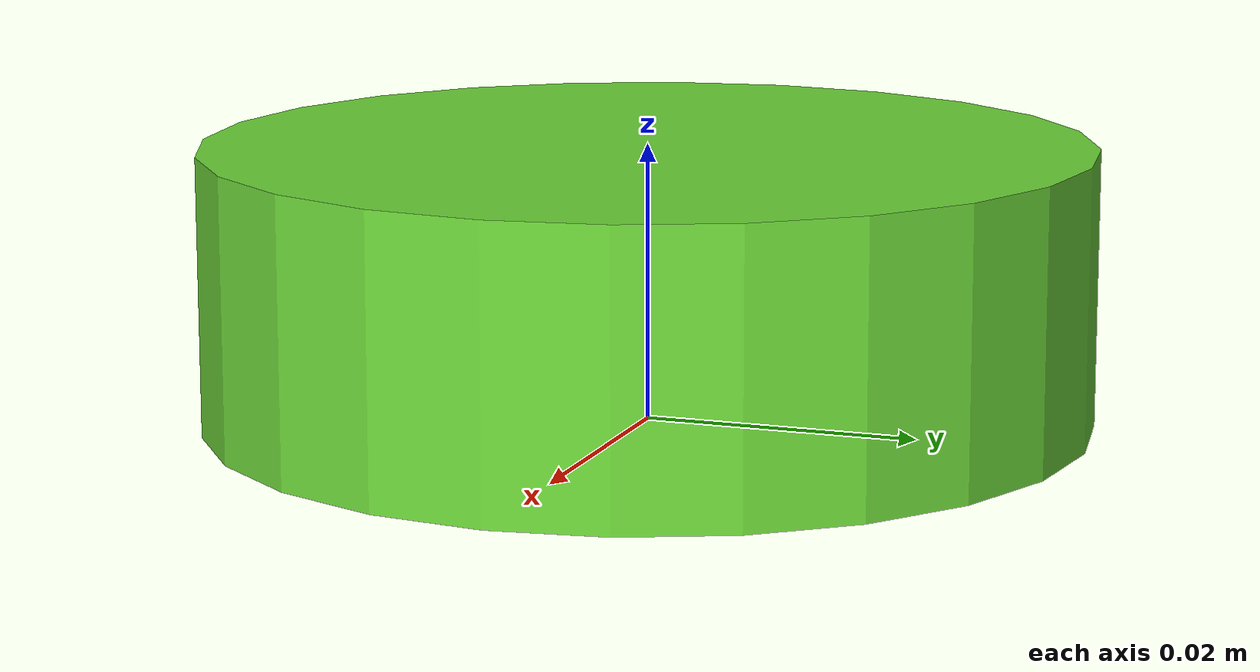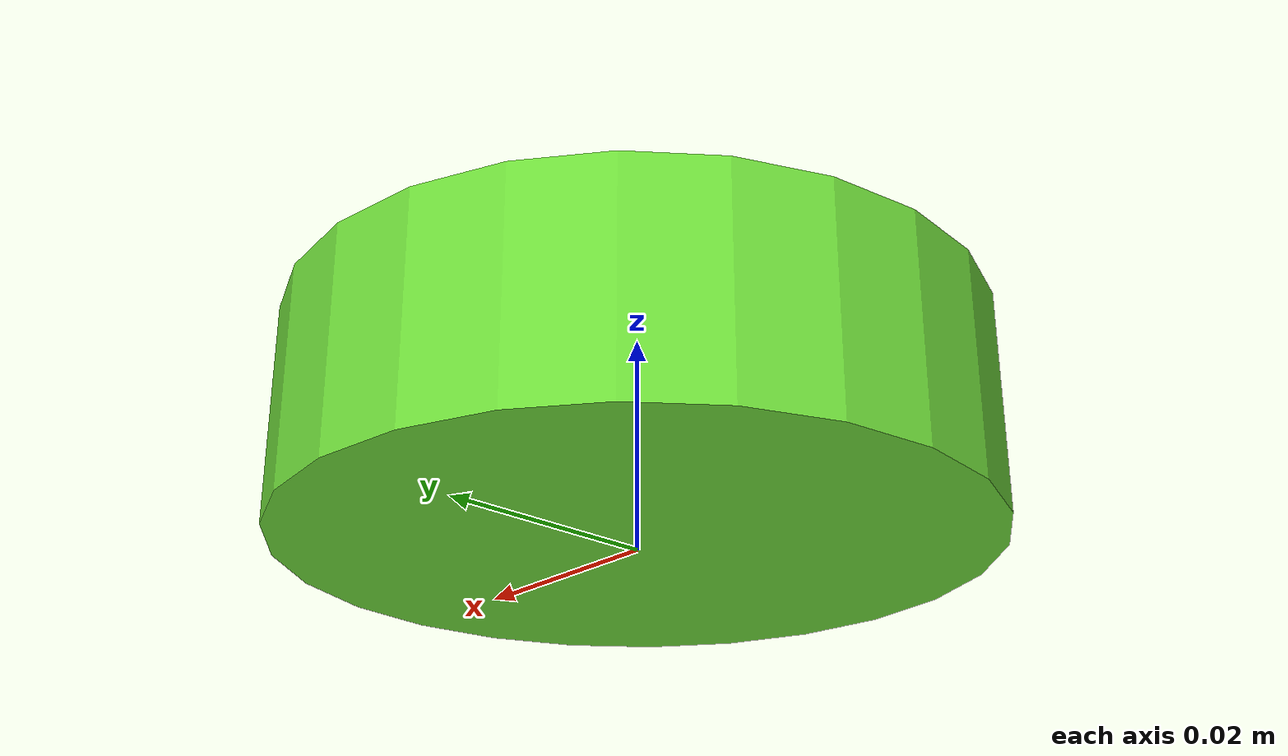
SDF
<sdf version="1.7">
  <model name="disc_32">
    <link name="base_link">
      <inertial>
        <mass>0.05</mass>
        <inertia>
          <ixx>7.91e-06</ixx>
          <ixy>0</ixy>
          <ixz>0</ixz>
          <iyy>7.91e-06</iyy>
          <iyz>0</iyz>
          <izz>1.56e-05</izz>
        </inertia>
        <pose>0 0 0.0025 0 0 0</pose>
      </inertial>
      <pose>0 0 0 0 0 0</pose>
      <visual name="visual">
        <pose>0 0 0.01 0 0 0</pose>
        <geometry>
            <cylinder>
              <radius>0.032</radius>
              <length>0.02</length>
            </cylinder>
        </geometry>
        <material>
          <diffuse>0.42700072020171886 0.8478681015049635 0.22240188360425384 1</diffuse>
        </material>
      </visual>
      <collision name="collision">
        <pose>0 0 0.01 0 0 0</pose>
        <geometry>
            <cylinder>
              <radius>0.032</radius>
              <length>0.02</length>
            </cylinder>
        </geometry>
      </collision>
      <collision name="ball1">
        <pose>0.02262741699796952 0.02262741699796952 0 0 0 0</pose>
        <geometry>
          <sphere>
            <radius>1e-07</radius>
          </sphere>
        </geometry>
      </collision>
      <collision name="ball2">
        <pose>-0.02262741699796952 0.02262741699796952 0 0 0 0</pose>
        <geometry>
          <sphere>
            <radius>1e-07</radius>
          </sphere>
        </geometry>
      </collision>
      <collision name="ball3">
        <pose>0.02262741699796952 -0.02262741699796952 0 0 0 0</pose>
        <geometry>
          <sphere>
            <radius>1e-07</radius>
          </sphere>
        </geometry>
      </collision>
      <collision name="ball4">
        <pose>-0.02262741699796952 -0.02262741699796952 0 0 0 0</pose>
        <geometry>
          <sphere>
            <radius>1e-07</radius>
          </sphere>
        </geometry>
      </collision>
    </link>
  </model>
</sdf>
